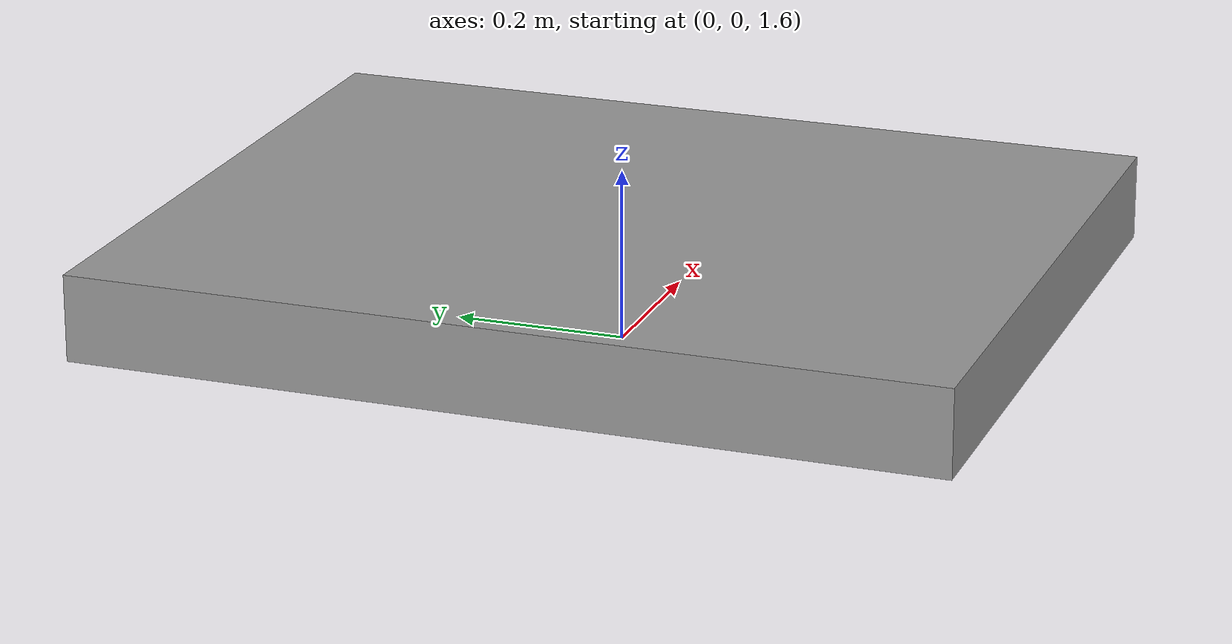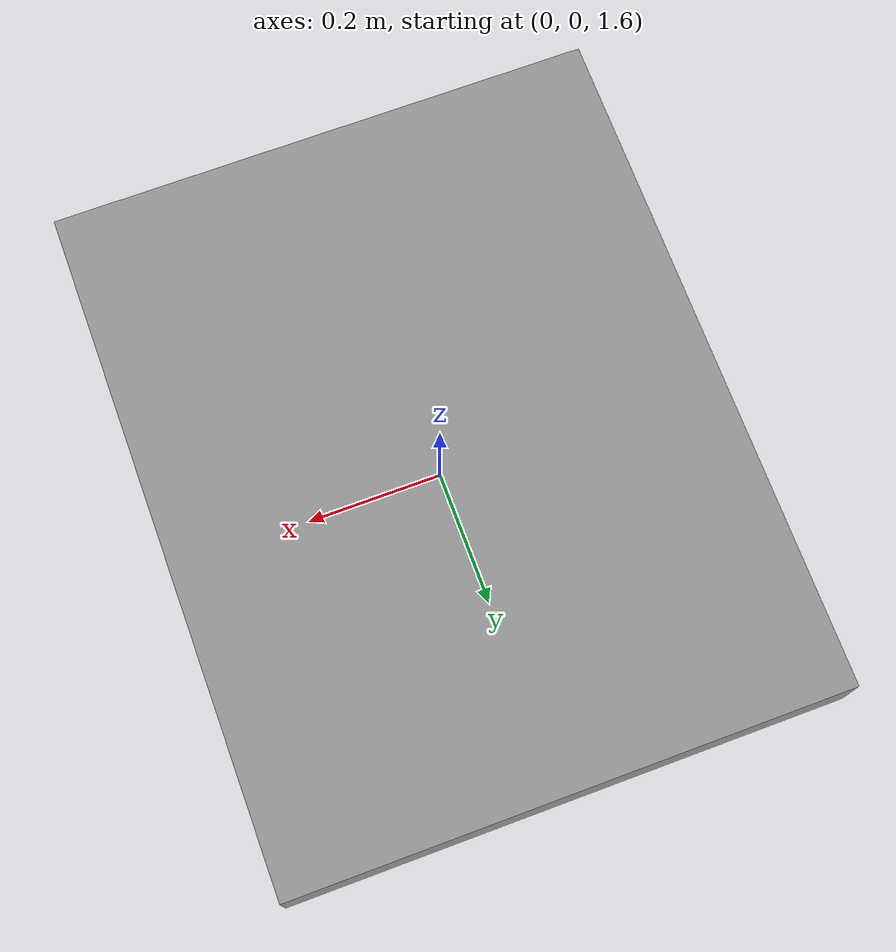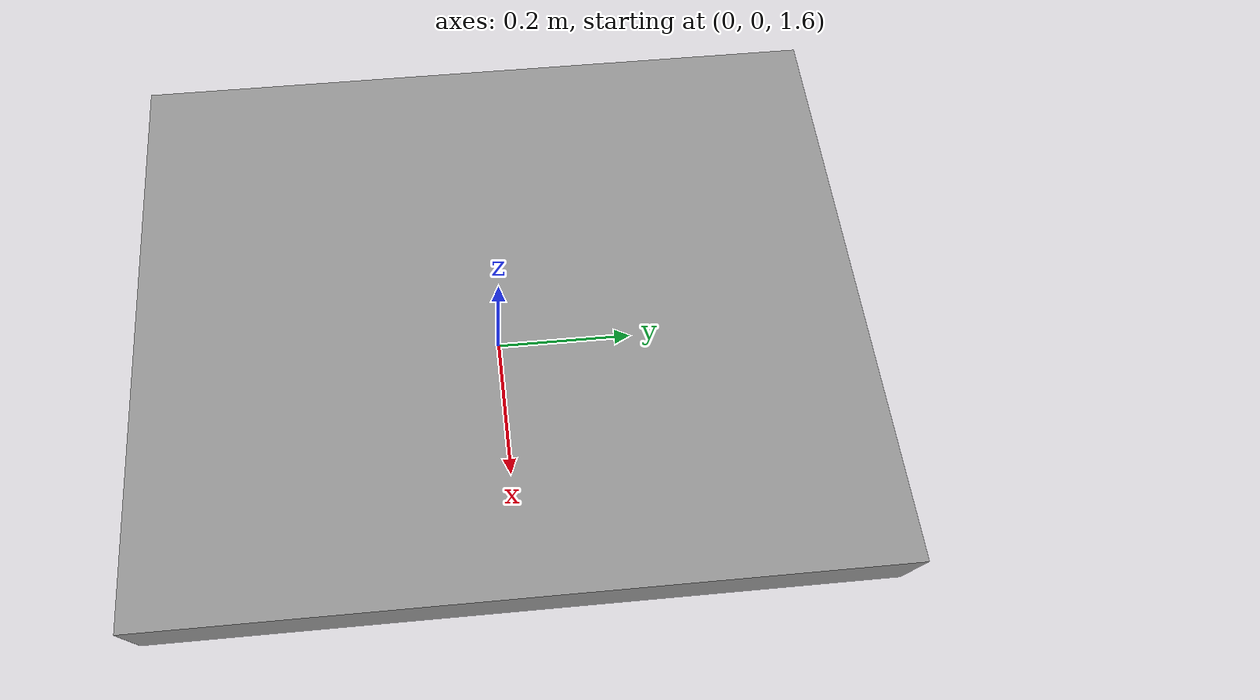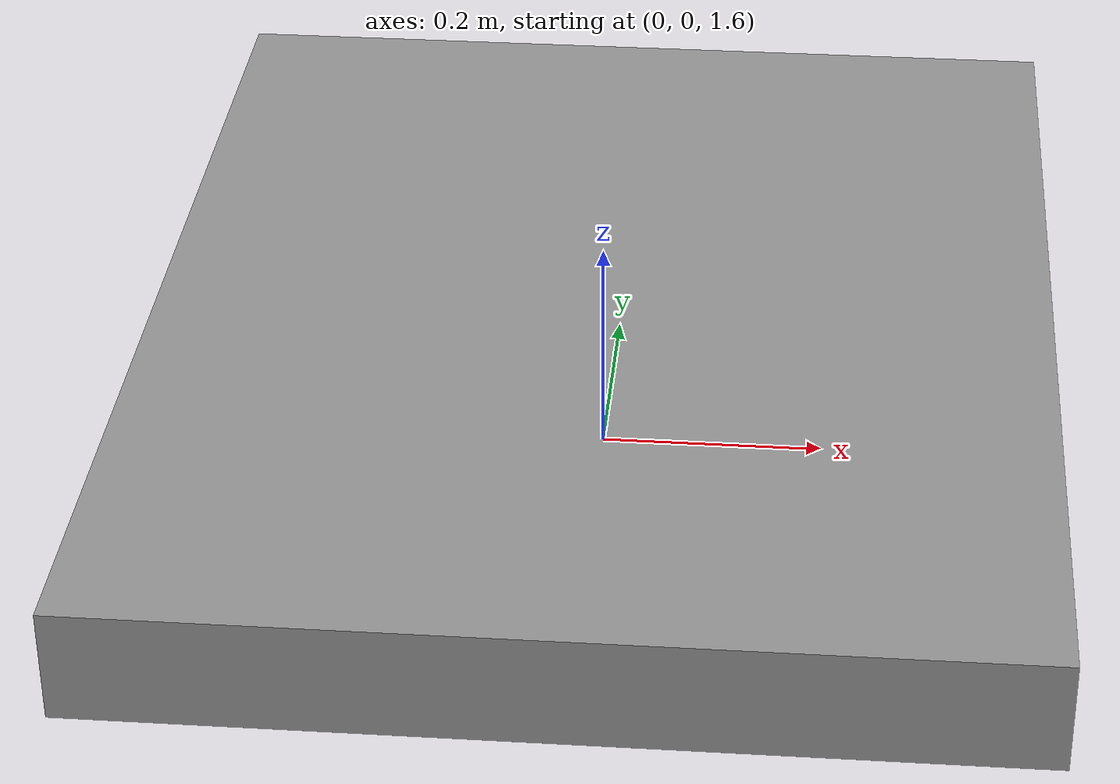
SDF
<?xml version='1.0'?>
<sdf version='1.6'>
  <model name='ceiling_1'>
    <pose frame=''>0 0 1.7 0 0 0</pose>
    <link name='link_1'>
      <visual name='visual'>
        <pose frame=''>0 0 0 0 -0 0</pose>
        <geometry>
          <box>
            <size>0.8 1 0.1</size>
          </box>
        </geometry>
        <material>
          <script>
            <uri>file://media/materials/scripts/gazebo.material</uri>
            <name>Gazebo/Grey</name>
          </script>
        </material>
      </visual>
      <collision name='collision'>
        <pose frame=''>0 0 0 0 -0 0</pose>
        <geometry>
          <box>
            <size>0.8 1 0.1</size>
          </box>
        </geometry>
      </collision>
    </link>
    <static>1</static>
  </model>
</sdf>
